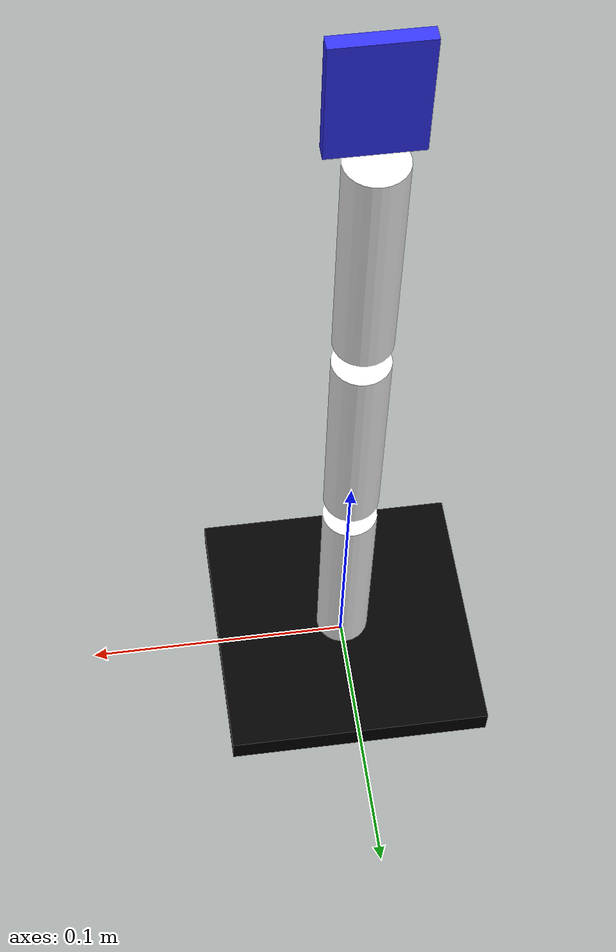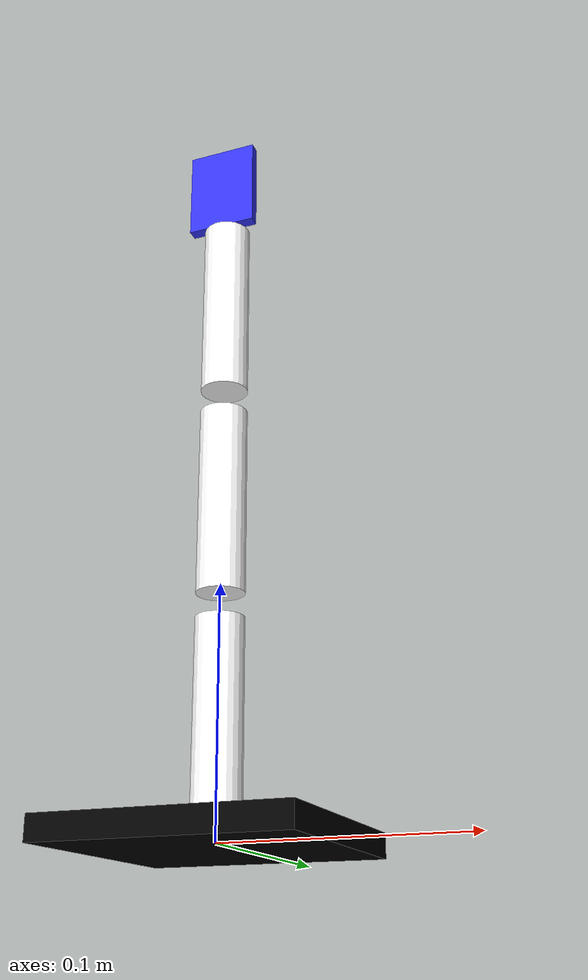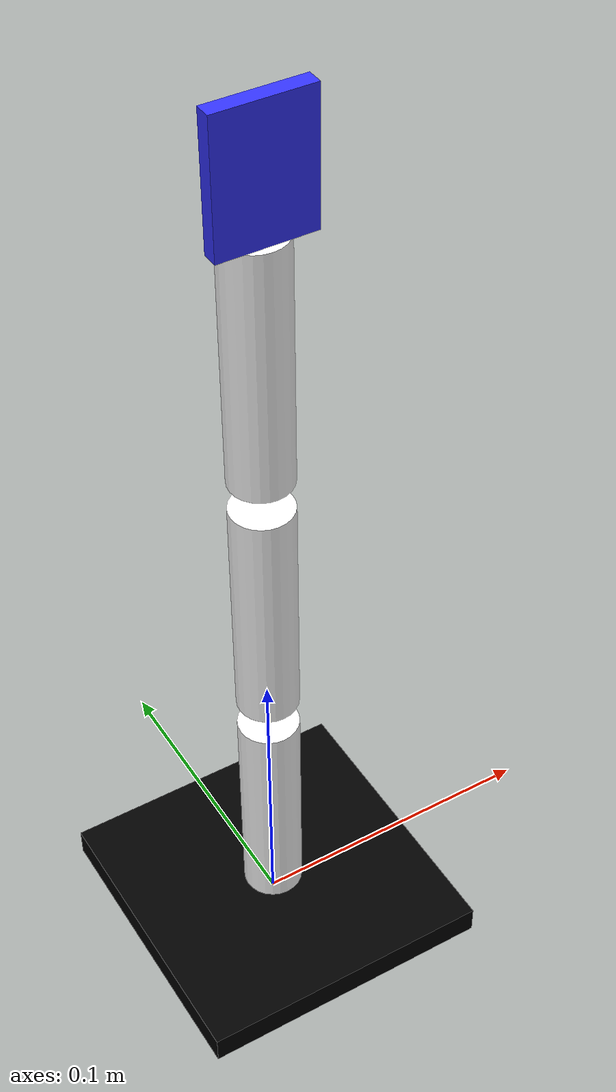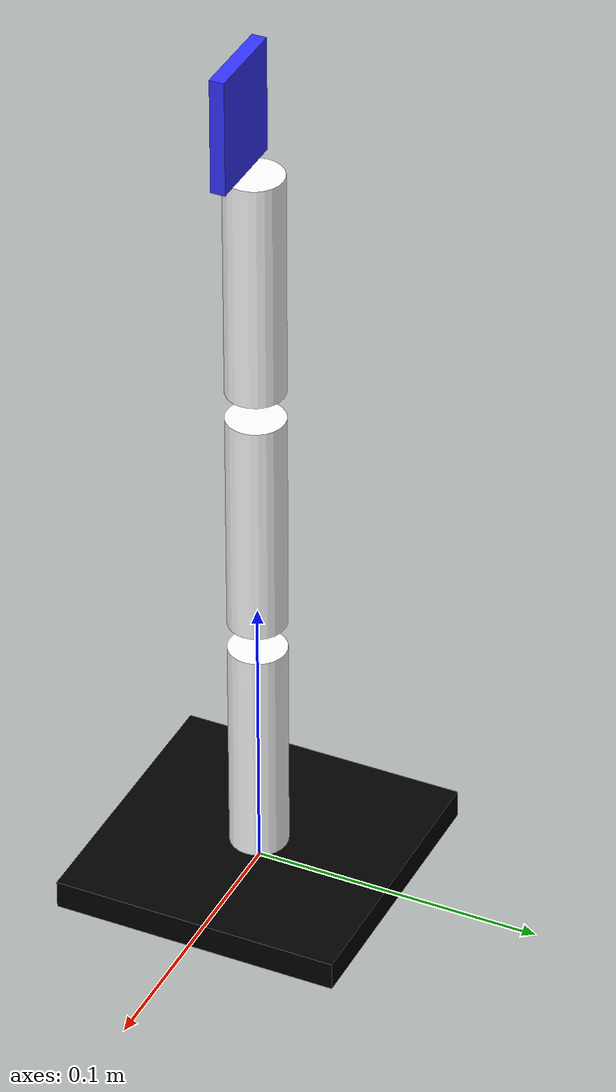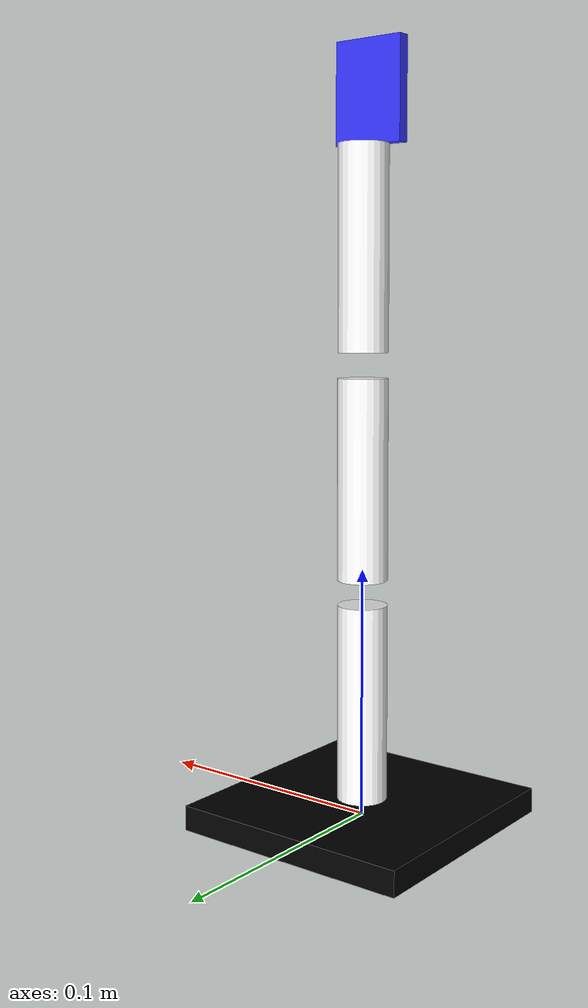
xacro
<?xml version='1.0'?>

<robot name="beetle" xmlns:xacro="http://www.ros.org/wiki/xacro">

  <xacro:include filename="inertial_macros.xacro"/>
  <xacro:include filename="beetle_robot.gazebo.xacro"/>

    <material name="white">
        <color rgba="1 1 1 1" />
    </material>

    <material name="orange">
        <color rgba="1 0.3 0.1 1"/>
    </material>

    <material name="blue">
        <color rgba="0.2 0.2 1 1"/>
    </material>

    <material name="black">
        <color rgba="0 0 0 1"/>
    </material>

    <material name="red">
        <color rgba="1 0 0 1"/>
    </material>

    <link name="base_footprint"/>

    <joint name="base_joint" type="fixed">
        <parent link="base_footprint"/>
        <child link="base_link"/>
        <origin xyz="0 0 0.001"/>
    </joint>

    <link name="base_link">
        <visual>
          <origin xyz="0 0 0.001"/>
          <geometry>
              <box size="0.1 0.1 0.01"/>
          </geometry>
          <material name="black"/>
        </visual>
        <collision>
          <origin xyz="0 0 0.001"/>
          <geometry>
              <box size="0.1 0.1 0.01"/>
          </geometry>
        </collision>
        <xacro:inertial_box mass="10" x="0.0" y="0.0" z="0.001">
            <origin xyz="0 0 0.001" rpy="0 0 0"/>
        </xacro:inertial_box>
    </link>

    <gazebo reference="base_link">
        <material>Gazebo/Black</material>
    </gazebo>

    <joint name="revolute_joint" type="continuous">
        <parent link="base_link"/>
        <child link="main_body"/>
        <origin xyz="0 0 0.005" rpy="0 0 0" />
        <axis xyz="0 0 1"/>
    </joint>

    <link name="main_body">
        <visual>
          <origin xyz="0 0 0.04"/>
          <geometry>
              <cylinder length="0.08" radius="0.01"/>
          </geometry>
          <material name="white"/>
        </visual>
        <collision>
          <origin xyz="0 0 0.04"/>
          <geometry>
              <cylinder length="0.08" radius="0.01"/>
          </geometry>
        </collision>
        <xacro:inertial_cylinder mass="10" length="0.08" radius="0.01">
            <origin xyz="0 0 0.04" rpy="0 0 0"/>
        </xacro:inertial_cylinder>
    </link>

    <gazebo reference="main_body">
        <material>Gazebo/White</material>
    </gazebo>

    <joint name="shoulder_joint" type="revolute">
        <parent link="main_body"/>
        <child link="upper_arm"/>
        <origin xyz="0 0 0.09" rpy="0 0 0" />
        <axis xyz="1 0 0"/>
        <limit effort="1000.0" lower="-${pi}" upper="0" velocity="0.5"/>
    </joint>

    <link name="upper_arm">
        <visual>
          <origin xyz="0 0 0.04"/>
          <geometry>
              <cylinder length="0.08" radius="0.01"/>
          </geometry>
          <material name="white"/>
        </visual>
        <collision>
          <origin xyz="0 0 0.08"/>
          <geometry>
              <cylinder length="0.08" radius="0.01"/>
          </geometry>
        </collision>
        <xacro:inertial_cylinder mass="10" length="0.08" radius="0.01">
            <origin xyz="0 0 0.08" rpy="0 0 0"/>
        </xacro:inertial_cylinder>
    </link>

    <gazebo reference="upper_arm">
        <material>Gazebo/White</material>
    </gazebo>

    <joint name="elbow_joint" type="revolute">
        <parent link="upper_arm"/>
        <child link="forearm"/>
        <origin xyz="0 0 0.09" rpy="0 0 0" />
        <axis xyz="1 0 0"/>
        <limit effort="1000.0" lower="-${pi}" upper="0" velocity="0.5"/>
    </joint>

    <link name="forearm">
        <visual>
          <origin xyz="0 0 0.04"/>
          <geometry>
              <cylinder length="0.08" radius="0.01"/>
          </geometry>
          <material name="white"/>
        </visual>
        <collision>
          <origin xyz="0 0 0.08"/>
          <geometry>
              <cylinder length="0.08" radius="0.01"/>
          </geometry>
        </collision>
        <xacro:inertial_cylinder mass="10" length="0.08" radius="0.01">
            <origin xyz="0 0 0.08" rpy="0 0 0"/>
        </xacro:inertial_cylinder>
    </link>

    <gazebo reference="forearm">
        <material>Gazebo/White</material>
    </gazebo>

    <joint name="wrist_joint" type="revolute">
        <parent link="forearm"/>
        <child link="hand"/>
        <origin xyz="0 0 0.08" rpy="0 0 0" />
        <axis xyz="1 0 0"/>
        <limit effort="1000.0" lower="-${pi}" upper="0" velocity="0.5"/>
    </joint>

    <link name="hand">
        <visual>
          <origin xyz="0 -0.005 0.02"/>
          <geometry>
              <box size="0.03 0.005 0.04"/>
          </geometry>
          <material name="blue"/>
        </visual>
        <collision>
          <origin xyz="0 -0.005 0.03"/>
          <geometry>
              <box size="0.03 0.005 0.04"/>
          </geometry>
        </collision>
        <xacro:inertial_box mass="10" x="0.0" y="-0.005" z="0.02">
            <origin xyz="0 -0.005 0.02" rpy="0 0 0"/>
        </xacro:inertial_box>
    </link>

    <gazebo reference="hand">
        <material>Gazebo/Blue</material>
    </gazebo>

  <joint name="imu_joint" type="fixed">
    <parent link="base_link"/>
    <child link="imu_link"/>
    <origin xyz="-0.032 0 0.068" rpy="0 0 0"/>
  </joint>

  <link name="imu_link"/>

</robot>

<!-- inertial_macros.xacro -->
<robot xmlns:xacro="http://www.ros.org/wiki/xacro" >

    <xacro:macro name="inertial_sphere" params="mass radius *origin">
        <inertial>
            <xacro:insert_block name="origin"/>
            <mass value="${mass}" />
            <inertia ixx="${(2/5) * mass * (radius*radius)}" ixy="0.0" ixz="0.0"
                    iyy="${(2/5) * mass * (radius*radius)}" iyz="0.0"
                    izz="${(2/5) * mass * (radius*radius)}" />
        </inertial>
    </xacro:macro>

    <xacro:macro name="inertial_box" params="mass x y z *origin">
        <inertial>
            <xacro:insert_block name="origin"/>
            <mass value="${mass}" />
            <inertia ixx="${(1/12) * mass * (y*y+z*z)}" ixy="0.0" ixz="0.0"
                    iyy="${(1/12) * mass * (x*x+z*z)}" iyz="0.0"
                    izz="${(1/12) * mass * (x*x+y*y)}" />
        </inertial>
    </xacro:macro>

    <xacro:macro name="inertial_cylinder" params="mass length radius *origin">
        <inertial>
            <xacro:insert_block name="origin"/>
            <mass value="${mass}" />
            <inertia ixx="${(1/12) * mass * (3*radius*radius + length*length)}" ixy="0.0" ixz="0.0"
                    iyy="${(1/12) * mass * (3*radius*radius + length*length)}" iyz="0.0"
                    izz="${(1/2) * mass * (radius*radius)}" />
        </inertial>
    </xacro:macro>

</robot>
